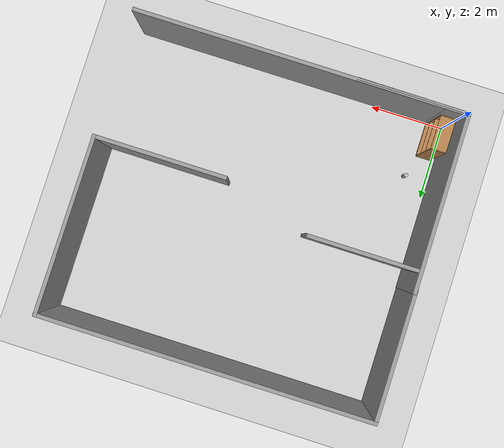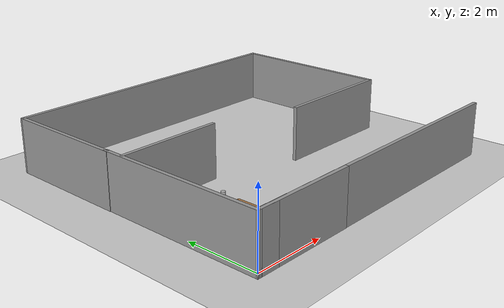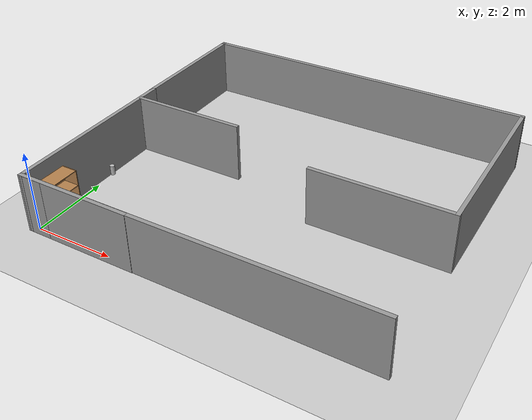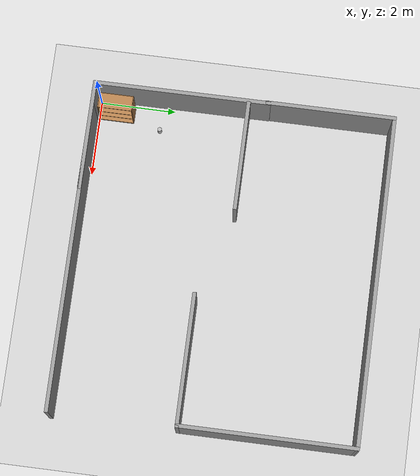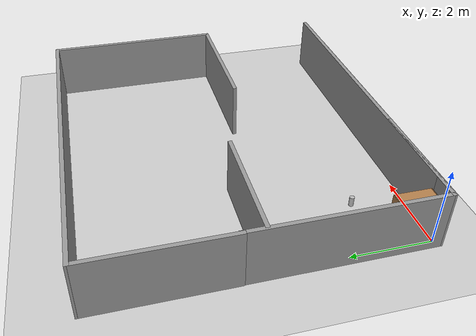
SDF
<sdf version="1.7">
 <world name="default">
  <light name="sun" type="directional">
   <pose>0 0 10 0 -0 0</pose>
   <diffuse>0.8 0.8 0.8 1</diffuse>
   <specular>0.2 0.2 0.2 1</specular>
   <attenuation>
    <range>1000</range>
    <constant>0.9</constant>
    <linear>0.01</linear>
    <quadratic>0.001</quadratic>
   </attenuation>
   <direction>-0.5 0.1 -0.9</direction>
   <spot><inner_angle>0</inner_angle><outer_angle>0</outer_angle><falloff>0</falloff></spot>
  </light>
  <model name="ground_plane">
   <static>1</static>
   <link name="link">
    <collision name="collision">
     <geometry><plane><normal>0 0 1</normal><size>100 100</size></plane></geometry>
     <surface><friction><ode><mu>100</mu><mu2>50</mu2></ode></friction></surface>
    </collision>
    <visual name="visual">
     <cast_shadows>0</cast_shadows>
     <geometry><plane><normal>0 0 1</normal><size>100 100</size></plane></geometry>
     <material>
      <script><uri>file://media/materials/scripts/gazebo.material</uri><name>Gazebo/Grey</name></script>
     </material>
    </visual>
   </link>
  </model>
  <gravity>0 0 -9.8</gravity>
  <magnetic_field>6e-06 2.3e-05 -4.2e-05</magnetic_field>
  <atmosphere type="adiabatic"/>
  <physics type="ode">
   <max_step_size>0.001</max_step_size>
   <real_time_factor>1</real_time_factor>
   <real_time_update_rate>1000</real_time_update_rate>
  </physics>
  <scene><ambient>0.4 0.4 0.4 1</ambient><background>0.7 0.7 0.7 1</background><shadows>1</shadows></scene>
  <spherical_coordinates>
   <surface_model>EARTH_WGS84</surface_model>
   <latitude_deg>0</latitude_deg>
   <longitude_deg>0</longitude_deg>
   <elevation>0</elevation>
   <heading_deg>0</heading_deg>
  </spherical_coordinates>
  <model name="bookshelf">
   <static>1</static>
   <link name="link">
    <inertial><mass>1</mass></inertial>
    <collision name="back">
     <pose>0 0.005 0.6 0 -0 0</pose>
     <geometry><box><size>0.9 0.01 1.2</size></box></geometry>
    </collision>
    <visual name="visual1">
     <pose>0 0.005 0.6 0 -0 0</pose>
     <geometry><box><size>0.9 0.01 1.2</size></box></geometry>
     <material>
      <script><uri>file://media/materials/scripts/gazebo.material</uri><name>Gazebo/Wood</name></script>
     </material>
    </visual>
    <collision name="left_side">
     <pose>0.45 -0.195 0.6 0 -0 0</pose>
     <geometry><box><size>0.02 0.4 1.2</size></box></geometry>
    </collision>
    <visual name="visual2">
     <pose>0.45 -0.195 0.6 0 -0 0</pose>
     <geometry><box><size>0.02 0.4 1.2</size></box></geometry>
     <material>
      <script><uri>file://media/materials/scripts/gazebo.material</uri><name>Gazebo/Wood</name></script>
     </material>
    </visual>
    <collision name="right_side">
     <pose>-0.45 -0.195 0.6 0 -0 0</pose>
     <geometry><box><size>0.02 0.4 1.2</size></box></geometry>
    </collision>
    <visual name="visual3">
     <pose>-0.45 -0.195 0.6 0 -0 0</pose>
     <geometry><box><size>0.02 0.4 1.2</size></box></geometry>
     <material>
      <script><uri>file://media/materials/scripts/gazebo.material</uri><name>Gazebo/Wood</name></script>
     </material>
    </visual>
    <collision name="bottom">
     <pose>0 -0.195 0.03 0 -0 0</pose>
     <geometry><box><size>0.88 0.4 0.06</size></box></geometry>
    </collision>
    <visual name="visual4">
     <pose>0 -0.195 0.03 0 -0 0</pose>
     <geometry><box><size>0.88 0.4 0.06</size></box></geometry>
     <material>
      <script><uri>file://media/materials/scripts/gazebo.material</uri><name>Gazebo/Wood</name></script>
     </material>
    </visual>
    <collision name="top">
     <pose>0 -0.195 1.19 0 -0 0</pose>
     <geometry><box><size>0.88 0.4 0.02</size></box></geometry>
    </collision>
    <visual name="visual5">
     <pose>0 -0.195 1.19 0 -0 0</pose>
     <geometry><box><size>0.88 0.4 0.02</size></box></geometry>
     <material>
      <script><uri>file://media/materials/scripts/gazebo.material</uri><name>Gazebo/Wood</name></script>
     </material>
    </visual>
    <collision name="low_shelf">
     <pose>0 -0.195 0.43 0 -0 0</pose>
     <geometry><box><size>0.88 0.4 0.02</size></box></geometry>
    </collision>
    <visual name="visual6">
     <pose>0 -0.195 0.43 0 -0 0</pose>
     <geometry><box><size>0.88 0.4 0.02</size></box></geometry>
     <material>
      <script><uri>file://media/materials/scripts/gazebo.material</uri><name>Gazebo/Wood</name></script>
     </material>
    </visual>
    <collision name="high_shelf">
     <pose>0 -0.195 0.8 0 -0 0</pose>
     <geometry><box><size>0.88 0.4 0.02</size></box></geometry>
    </collision>
    <visual name="visual7">
     <pose>0 -0.195 0.8 0 -0 0</pose>
     <geometry><box><size>0.88 0.4 0.02</size></box></geometry>
     <material>
      <script><uri>file://media/materials/scripts/gazebo.material</uri><name>Gazebo/Wood</name></script>
     </material>
    </visual>
   </link>
   <pose>0.059195 0.475716 0 0 -0 1.56928</pose>
  </model>
  <model name="home">
   <pose>1.31728 2.19622 0 0 -0 0</pose>
   <link name="Wall_0">
    <collision name="Wall_0_Collision">
     <geometry><box><size>4.70001 0.1 1.5</size></box></geometry>
     <pose>0 0 0.75 0 -0 0</pose>
    </collision>
    <visual name="Wall_0_Visual">
     <pose>0 0 0.75 0 -0 0</pose>
     <geometry><box><size>4.70001 0.1 1.5</size></box></geometry>
     <material>
      <script><uri>file://media/materials/scripts/gazebo.material</uri><name>Gazebo/Grey</name></script>
      <ambient>1 1 1 1</ambient>
     </material>
     <meta><layer>0</layer></meta>
    </visual>
    <pose>-1.44407 0.005033 0 0 -0 1.57297</pose>
   </link>
   <link name="Wall_2">
    <collision name="Wall_2_Collision">
     <geometry><box><size>2.95002 0.1 1.5</size></box></geometry>
     <pose>0 0 0.75 0 -0 0</pose>
    </collision>
    <visual name="Wall_2_Visual">
     <pose>0 0 0.75 0 -0 0</pose>
     <geometry><box><size>2.95002 0.1 1.5</size></box></geometry>
     <material>
      <script><uri>file://media/materials/scripts/gazebo.material</uri><name>Gazebo/Grey</name></script>
      <ambient>1 1 1 1</ambient>
     </material>
     <meta><layer>0</layer></meta>
    </visual>
    <pose>-0.014071 -2.29997 0 0 -0 -0.003509</pose>
   </link>
   <link name="Wall_4">
    <collision name="Wall_4_Collision">
     <geometry><box><size>2.9495 0.1 1.5</size></box></geometry>
     <pose>0 0 0.75 0 -0 0</pose>
    </collision>
    <visual name="Wall_4_Visual">
     <pose>0 0 0.75 0 -0 0</pose>
     <geometry><box><size>2.9495 0.1 1.5</size></box></geometry>
     <material>
      <script><uri>file://media/materials/scripts/gazebo.material</uri><name>Gazebo/Grey</name></script>
      <ambient>1 1 1 1</ambient>
     </material>
     <meta><layer>0</layer></meta>
    </visual>
    <pose>0.024429 1.77503 0 0 -0 0</pose>
   </link>
   <static>1</static>
  </model>
  <model name="beer">
   <link name="link">
    <pose>0 0 0.115 0 -0 0</pose>
    <inertial>
     <mass>0.39</mass>
     <inertia><ixx>0.00058</ixx><ixy>0</ixy><ixz>0</ixz><iyy>0.00058</iyy><iyz>0</iyz><izz>0.00019</izz></inertia>
    </inertial>
    <collision name="collision">
     <geometry><cylinder><radius>0.055</radius><length>0.23</length></cylinder></geometry>
    </collision>
    <visual name="visual">
     <geometry><cylinder><radius>0.055</radius><length>0.23</length></cylinder></geometry>
     <material>
      <script>
       <uri>model://beer/materials/scripts</uri>
       <uri>model://beer/materials/textures</uri>
       <name>Beer/Diffuse</name>
      </script>
     </material>
    </visual>
   </link>
   <pose>0.79946 1.71717 0.774999 -2e-06 -2.1e-05 0.000475</pose>
  </model>
  <model name="home_0">
   <pose>4.2257 3.86204 0 0 -0 0</pose>
   <link name="Wall_0">
    <collision name="Wall_0_Collision">
     <geometry><box><size>3.44979 0.1 1.5</size></box></geometry>
     <pose>0 0 0.75 0 -0 0</pose>
    </collision>
    <visual name="Wall_0_Visual">
     <pose>0 0 0.75 0 -0 0</pose>
     <geometry><box><size>3.44979 0.1 1.5</size></box></geometry>
     <material>
      <script><uri>file://media/materials/scripts/gazebo.material</uri><name>Gazebo/Grey</name></script>
      <ambient>1 1 1 1</ambient>
     </material>
     <meta><layer>0</layer></meta>
    </visual>
    <pose>-4.3697 2.27596 0 0 -0 1.5708</pose>
   </link>
   <link name="Wall_1">
    <collision name="Wall_1_Collision">
     <geometry><box><size>8.80037 0.1 1.5</size></box></geometry>
     <pose>0 0 0.75 0 -0 0</pose>
    </collision>
    <visual name="Wall_1_Visual">
     <pose>0 0 0.75 0 -0 0</pose>
     <geometry><box><size>8.80037 0.1 1.5</size></box></geometry>
     <material>
      <script><uri>file://media/materials/scripts/gazebo.material</uri><name>Gazebo/Grey</name></script>
      <ambient>1 1 1 1</ambient>
     </material>
     <meta><layer>0</layer></meta>
    </visual>
    <pose>-0.019534 3.95688 0 0 -0 0.00136</pose>
   </link>
   <link name="Wall_17">
    <collision name="Wall_17_Collision">
     <geometry><box><size>8.7 0.1 1.5</size></box></geometry>
     <pose>0 0 0.75 0 -0 0</pose>
    </collision>
    <visual name="Wall_17_Visual">
     <pose>0 0 0.75 0 -0 0</pose>
     <geometry><box><size>8.7 0.1 1.5</size></box></geometry>
     <material>
      <script><uri>file://media/materials/scripts/gazebo.material</uri><name>Gazebo/Grey</name></script>
      <ambient>1 1 1 1</ambient>
     </material>
     <meta><layer>0</layer></meta>
    </visual>
    <pose>0.069782 -3.96286 0 0 -0 0</pose>
   </link>
   <link name="Wall_2">
    <collision name="Wall_2_Collision">
     <geometry><box><size>4.7 0.1 1.5</size></box></geometry>
     <pose>0 0 0.75 0 -0 0</pose>
    </collision>
    <visual name="Wall_2_Visual">
     <pose>0 0 0.75 0 -0 0</pose>
     <geometry><box><size>4.7 0.1 1.5</size></box></geometry>
     <material>
      <script><uri>file://media/materials/scripts/gazebo.material</uri><name>Gazebo/Grey</name></script>
      <ambient>1 1 1 1</ambient>
     </material>
     <meta><layer>0</layer></meta>
    </visual>
    <pose>4.33063 1.6628 0 0 -0 -1.5708</pose>
   </link>
   <link name="Wall_3">
    <collision name="Wall_3_Collision">
     <geometry><box><size>3.5 0.1 1.5</size></box></geometry>
     <pose>0 0 0.75 0 -0 0</pose>
    </collision>
    <visual name="Wall_3_Visual">
     <pose>0 0 0.75 0 -0 0</pose>
     <geometry><box><size>3.5 0.1 1.5</size></box></geometry>
     <material>
      <script><uri>file://media/materials/scripts/gazebo.material</uri><name>Gazebo/Grey</name></script>
      <ambient>1 1 1 1</ambient>
     </material>
     <meta><layer>0</layer></meta>
    </visual>
    <pose>2.63063 -0.637203 0 0 -0 3.14159</pose>
   </link>
   <static>1</static>
  </model>
 </world>
</sdf>
